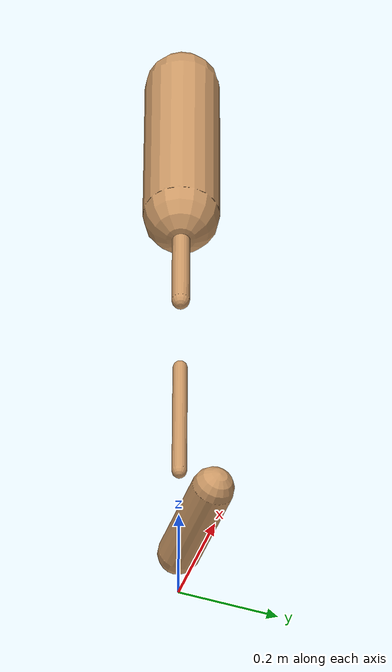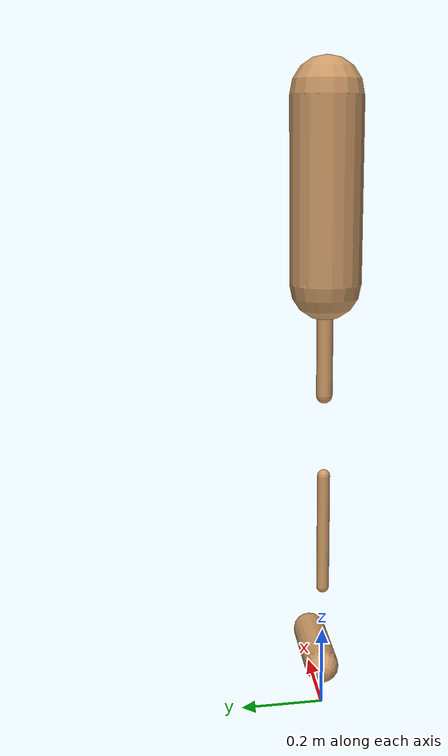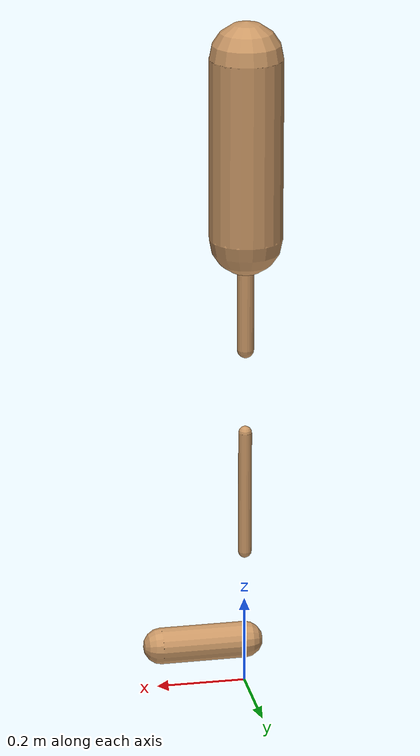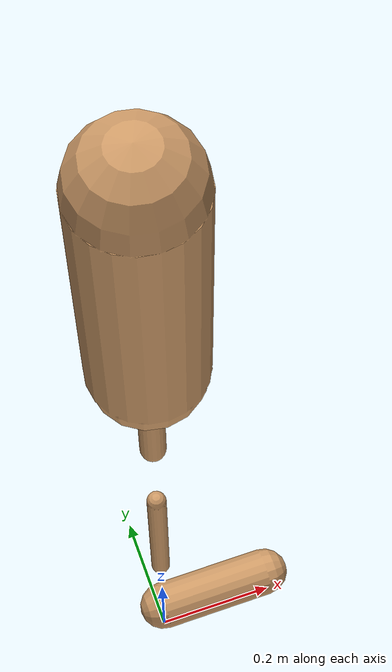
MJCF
<mujoco model="walker2d">
  <compiler angle="degree" coordinate="global" inertiafromgeom="true" />
  <default>
    <joint armature="0.01" damping=".1" limited="true" />
    <geom conaffinity="0" condim="3" contype="1" density="1000" friction="0.8 .1 .1" rgba="0.8 0.6 .4 1" />
  </default>
  <option integrator="RK4" timestep="0.002" />
  <worldbody>

    <body name="torso" pos="0 0 -0.411554004108809">
      <joint armature="0" axis="1 0 0" damping="0" limited="false" name="ignorex" pos="0 0 0" stiffness="0" type="slide" />
      <joint armature="0" axis="0 0 1" damping="0" limited="false" name="ignorez" pos="0 0 0" ref="1.25" stiffness="0" type="slide" />
      <joint armature="0" axis="0 1 0" damping="0" limited="false" name="ignorey" pos="0 0 0" stiffness="0" type="hinge" />
      <geom fromto="0 0 1.45 0 0 1.05" name="torso_geom" size="0.0802794154982936" type="capsule" />
      <body name="thigh">
        <joint axis="0 -1 0" name="thigh_joint" pos="0 0 1.05" range="-150 0" type="hinge" />
        <geom fromto="0.0 0.0 1.05 0.0 0.0 0.7949466335252253" name="thigh_geom" size="0.01865893393927839" type="capsule" />
        <body name="leg" pos="0.0 0.0 0.19494663352522534">
          <joint axis="0 -1 0" name="leg_joint" pos="0 0 0.6" range="-150 0" type="hinge" />
          <geom fromto="0.0 0.0 0.6 0.0 0.0 0.3166073705835837" name="leg_geom" size="0.014927147151422711" type="capsule" />
          <body name="foot" pos="0.0 0.0 0.21660737058358367">
            <joint axis="0 -1 0" name="foot_joint" pos="0 0 0.1" range="-45 45" type="hinge" />
            <geom fromto="0.0 0.0 0.1 0.18991166015301006 0.0 0.1" name="foot_geom" size="0.040939418388269484" type="capsule" />
          </body>
        </body>
      </body>

      <body name="thigh_left">
        <joint axis="0 -1 0" name="thigh_left_joint" pos="0 0 1.05" range="-150 0" type="hinge" />
        <geom fromto="0.0 0.0 1.05 0.0 0.0 0.7949466335252253" name="thigh_left_geom" rgba=".7 .3 .6 1" size="0.01865893393927839" type="capsule" />
        <body name="leg_left" pos="0.0 0.0 0.19494663352522534">
          <joint axis="0 -1 0" name="leg_left_joint" pos="0 0 0.6" range="-150 0" type="hinge" />
          <geom fromto="0.0 0.0 0.6 0.0 0.0 0.3166073705835837" name="leg_left_geom" rgba=".7 .3 .6 1" size="0.014927147151422711" type="capsule" />
          <body name="foot_left" pos="0.0 0.0 0.21660737058358367">
            <joint axis="0 -1 0" name="foot_left_joint" pos="0 0 0.1" range="-45 45" type="hinge" />
            <geom fromto="0.0 0.0 0.1 0.18991166015301006 0.0 0.1" name="foot_left_geom" rgba=".7 .3 .6 1" size="0.040939418388269484" type="capsule" />
          </body>
        </body>
      </body>
    </body>
  </worldbody>
  <actuator>

    <motor ctrllimited="true" ctrlrange="-1.0 1.0" gear="100" joint="thigh_joint" />
    <motor ctrllimited="true" ctrlrange="-1.0 1.0" gear="100" joint="leg_joint" />
    <motor ctrllimited="true" ctrlrange="-1.0 1.0" gear="100" joint="foot_joint" />
    <motor ctrllimited="true" ctrlrange="-1.0 1.0" gear="100" joint="thigh_left_joint" />
    <motor ctrllimited="true" ctrlrange="-1.0 1.0" gear="100" joint="leg_left_joint" />
    <motor ctrllimited="true" ctrlrange="-1.0 1.0" gear="100" joint="foot_left_joint" />

  </actuator>
</mujoco>
